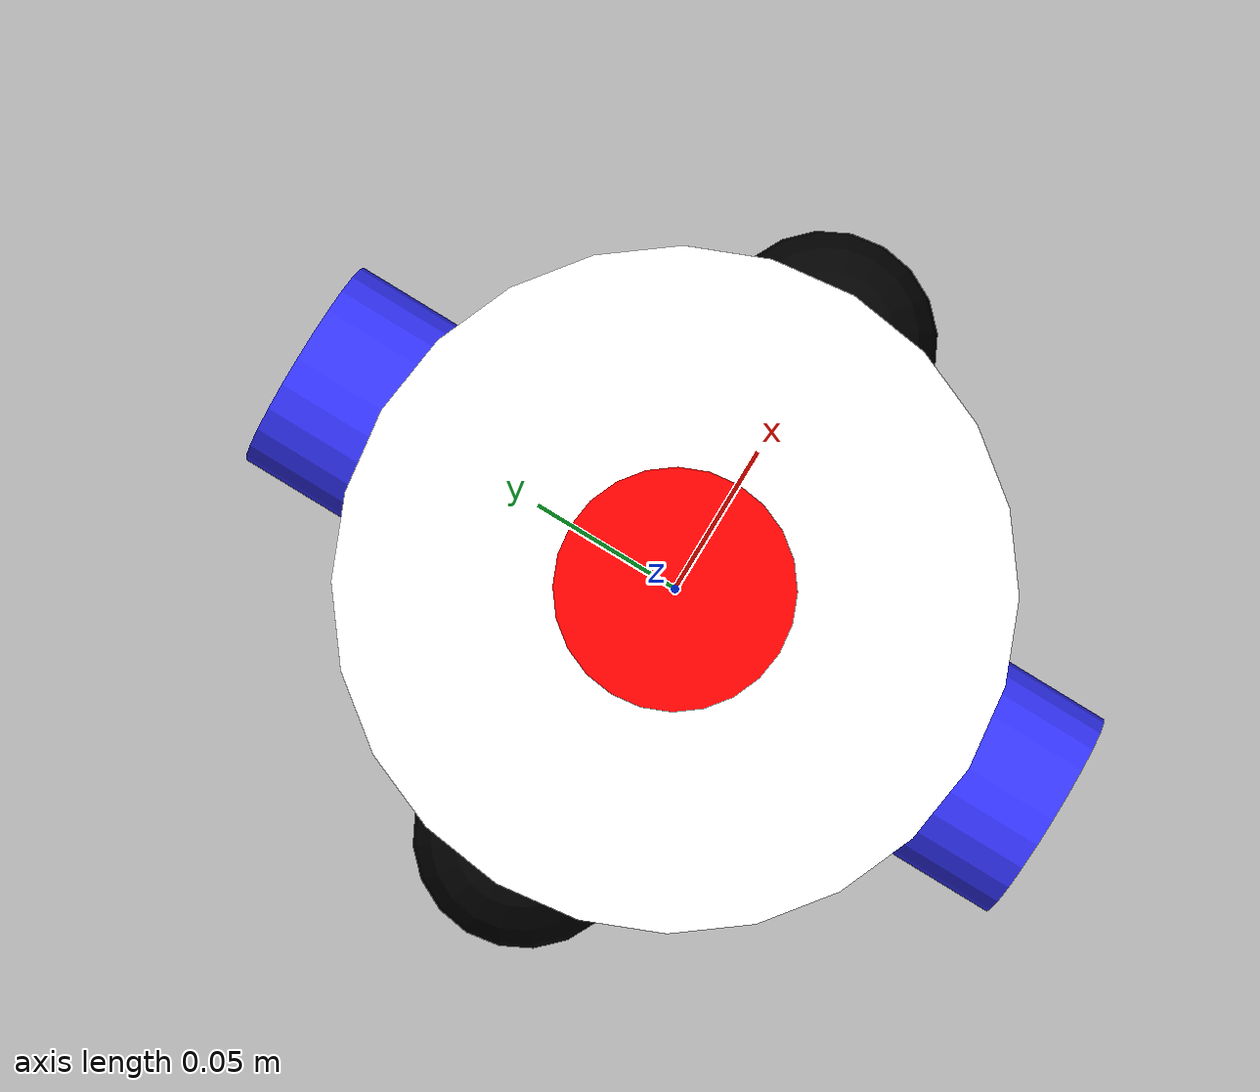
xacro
<?xml version="1.0"?>
<robot xmlns:xacro="http://www.ros.org/wiki/xacro"  name="robot">

  <xacro:arg name="use_ros2_control" default="true"/>
  <xacro:arg name="sim_mode" default="true"/>

  <xacro:include filename="robot_core.xacro" />

  <xacro:if value="$(arg use_ros2_control)">
    <xacro:include filename="ros2_control.xacro" />
  </xacro:if>
  <xacro:unless value="$(arg use_ros2_control)">
    <xacro:include filename="gazebo_control.xacro"/>
  </xacro:unless>

  <xacro:include filename="lidar.xacro" />
  <xacro:include filename="imu.xacro" />

</robot>

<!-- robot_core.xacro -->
<robot xmlns:xacro="http://www.ros.org/wiki/xacro" >

    <xacro:include filename="inertial_macros.xacro"/>

    <material name="white">
        <color rgba="1 1 1 1" />
    </material>

    <material name="orange">
        <color rgba="1 0.3 0.1 1"/>
    </material>

    <material name="blue">
        <color rgba="0.2 0.2 1 1"/>
    </material>

    <material name="black">
        <color rgba="0 0 0 1"/>
    </material>

    <material name="red">
        <color rgba="1 0 0 1"/>
    </material>

    <!-- BASE LINK -->

    <link name="base_link">

    </link>

    <joint name="base_footprint_joint" type="fixed">
      <parent link="base_link"/>
      <child link="base_footprint"/>
      <origin xyx="0 0 0" rpy="0 0 0"/>
    </joint>

    <link name="base_footprint">
    </link>

    <!-- CHASSIS LINK -->

    <joint name="chassis_joint" type="fixed">
        <parent link="base_link"/>
        <child link="chassis"/>
        <origin xyz="0 0 0"/>
    </joint>

  <link name="chassis">
      <visual>
          <origin xyz="0 0 0.065"/> <!-- half the height (90mm) is 45mm, plus 20mm above ground -->
          <geometry>
              <cylinder radius="0.1" length="0.09"/>
          </geometry>
          <material name="white"/>
      </visual>
      <collision>
          <origin xyz="0 0 0.065"/>
          <geometry>
              <cylinder radius="0.1" length="0.09"/>
          </geometry>
      </collision>
      <xacro:inertial_cylinder mass="0.5" radius="0.1" length="0.09">
          <origin xyz="0 0 0.065" rpy="0 0 0"/>
      </xacro:inertial_cylinder>
  </link>

    <gazebo reference="chassis">
      <material>Gazebo/White</material>
    </gazebo>

    <!-- LEFT WHEEL LINK -->

    <joint name="left_wheel_joint" type="continuous">
        <parent link="base_link"/>
        <child link="left_wheel"/>
        <origin xyz="0 0.1175 0" rpy="-${pi/2} 0 0" />
        <axis xyz="0 0 1"/>
    </joint>

    <link name="left_wheel">
        <visual>
            <geometry>
                <cylinder radius="0.035" length="0.035"/>
            </geometry>
            <material name="blue"/>
        </visual>
        <collision>
            <geometry>
                <sphere radius="0.035"/>
            </geometry>
        </collision>
        <xacro:inertial_cylinder mass="0.1" length="0.035" radius="0.035">
            <origin xyz="0 0 0" rpy="0 0 0"/>
        </xacro:inertial_cylinder>
    </link>

    <gazebo reference="left_wheel">
      <material>Gazebo/Blue</material>
    </gazebo>
    <!-- RIGHT WHEEL LINK -->

    <joint name="right_wheel_joint" type="continuous">
        <parent link="base_link"/>
        <child link="right_wheel"/>
        <origin xyz="0 -0.1175 0" rpy="${pi/2} 0 0" />
        <axis xyz="0 0 -1"/>
    </joint>

    <link name="right_wheel">
        <visual>
            <geometry>
                <cylinder radius="0.035" length="0.035"/>
            </geometry>
            <material name="blue"/>
        </visual>
        <collision>
            <geometry>
                <sphere radius="0.035"/>
            </geometry>
        </collision>
        <xacro:inertial_cylinder mass="0.1" length="0.035" radius="0.035">
            <origin xyz="0 0 0" rpy="0 0 0"/>
        </xacro:inertial_cylinder>
    </link>

    <gazebo reference="right_wheel">
      <material>Gazebo/Blue</material>
    </gazebo>
    <!-- CASTER WHEEL LINK -->

    <joint name="caster_wheel_joint" type="fixed">
        <parent link="chassis"/>
        <child link="caster_wheel"/>
        <origin xyz="0.09 0 0"/>
    </joint>

    <link name="caster_wheel">
        <visual>
            <geometry>
                <sphere radius="0.035"/>
            </geometry>
            <material name="black"/>
        </visual>
        <collision>
            <geometry>
                <sphere radius="0.035"/>
            </geometry>
        </collision>
        <xacro:inertial_sphere mass="0.1" radius="0.035">
            <origin xyz="0 0 0" rpy="0 0 0"/>
        </xacro:inertial_sphere>
    </link>

    <joint name="caster_wheel_joint2" type="fixed">
        <parent link="chassis"/>
        <child link="caster_wheel2"/>
        <origin xyz="-0.09 0 0"/>
    </joint>

    <link name="caster_wheel2">
        <visual>
            <geometry>
                <sphere radius="0.035"/>
            </geometry>
            <material name="black"/>
        </visual>
        <collision>
            <geometry>
                <sphere radius="0.035"/>
            </geometry>
        </collision>
        <xacro:inertial_sphere mass="0.1" radius="0.035">
            <origin xyz="0 0 0" rpy="0 0 0"/>
        </xacro:inertial_sphere>
    </link>

    <gazebo reference="caster_wheel">
      <material>Gazebo/Black</material>
      <mu1 value="0.001"/>
      <mu2 value="0.001"/>
    </gazebo>

    <gazebo reference="caster_wheel2">
      <material>Gazebo/Black</material>
      <mu1 value="0.001"/>
      <mu2 value="0.001"/>
    </gazebo>

</robot>

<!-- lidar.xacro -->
<robot xmlns:xacro="http://www.ros.org/wiki/xacro" >
  <joint name="laser_joint" type="fixed">
    <parent link="chassis"/>
    <child link="laser_frame" />
    <origin xyz="0 0 0.110" rpy="0 0 0"/>

  </joint>
  <link name="laser_frame">
    <visual>
        <geometry>
            <cylinder radius="0.035" length="0.05"/>
        </geometry>
        <material name="red"/>
    </visual>
    <collision>
        <geometry>
            <cylinder radius="0.035" length="0.05"/>
        </geometry>
    </collision>
    <xacro:inertial_cylinder mass="0.1" length="0.05" radius="0.035">
        <origin xyz="0 0 0" rpy="0 0 0"/>
    </xacro:inertial_cylinder>
  </link>

  <gazebo reference="laser_frame">
    <material>Gazebo/Red</material>
    <sensor name="laser" type="gpu_lidar">
      <always_on>true</always_on>
      <pose> 0 0 0 0 0 0 </pose>
      <visualize> true </visualize>
      <update_rate>10</update_rate>
      <lidar>
        <scan>
          <horizontal>
            <samples>360</samples>
            <resolution>1</resolution>
            <min_angle>-3.14</min_angle>
            <max_angle>3.14</max_angle>
          </horizontal>
        </scan>
        <range>
          <min>0.3</min>
          <max>12</max>
          <resolution>0.01</resolution>
        </range>
      </lidar>
      <plugin name="laser_controller" filename="libgazebo_ros_ray_sensor.so">
        <ros>
          <namespace>/</namespace>
          <remapping>laser_controller/out:=scan</remapping>
        </ros>
        <output_type>sensor_msgs/LaserScan</output_type>
        <frame_name>laser_frame</frame_name>
      </plugin>

    </sensor>

  </gazebo>

</robot>

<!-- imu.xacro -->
<robot xmlns:xacro="http://www.ros.org/wiki/xacro"  name="imu_robot">
  <material name="whites">
      <color rgba="1 1 1 1" />
  </material>

  <!-- IMU Sensor -->
  <link name="imu_link">
    <inertial>
      <mass value="0.01"/>
      <origin xyz="0 0 0" rpy="0 0 0"/>
      <inertia ixx="1e-5" ixy="0" ixz="0" iyy="1e-5" iyz="0" izz="1e-5"/>
    </inertial>
    <visual>
      <origin xyz="0 0 0.045"/>
      <geometry>
        <box size="0.02 0.02 0.02"/>
      </geometry>
      <material name="whites"/>
    </visual>
    <collision>
      <origin xyz="0 0 0.045"/>
      <geometry>
        <box size="0.02 0.02 0.02"/>
      </geometry>
    </collision>
  </link>

  <joint name="imu_joint" type="fixed">
    <parent link="base_link"/>
    <child link="imu_link"/>
    <origin xyz="0 0 0.045" rpy="0 0 0"/>
  </joint>

  <gazebo reference="imu_link">
    <gravity>true</gravity>
    <sensor name="imu_sensor" type="imu">
      <always_on>true</always_on>
      <update_rate>100</update_rate>
      <visualize>true</visualize>
      <topic>__default_topic__</topic>
      <plugin filename="libgazebo_ros_imu_sensor.so" name="imu">
        <ros>
          <namespace>/</namespace>
          <remapping>imu/out:=imu</remapping>
        </ros>
        <topicName>/imu</topicName>
        <bodyName>imu_link</bodyName>
        <updateRateHZ>10.0</updateRateHZ>
        <gaussianNoise>0.0</gaussianNoise>
        <xyzOffset>0 0 0</xyzOffset>
        <rpyOffset>0 0 0</rpyOffset>
        <frameName>imu_link</frameName>
        <initialOrientationAsReference>false</initialOrientationAsReference>
      </plugin>
      <pose>0 0 0 0 0 0</pose>
    </sensor>
  </gazebo>
</robot>
